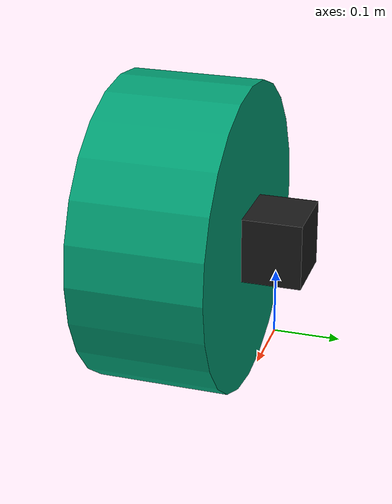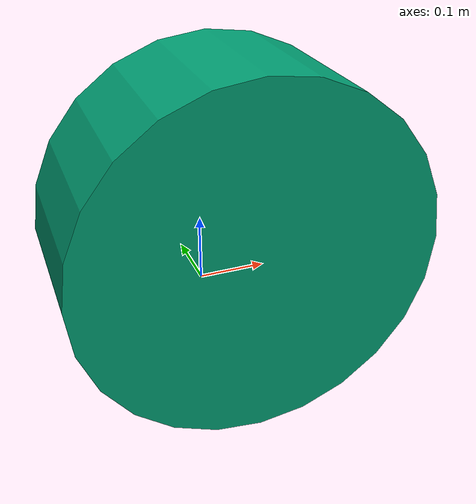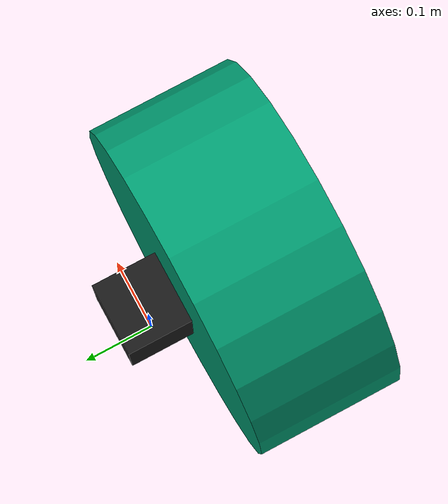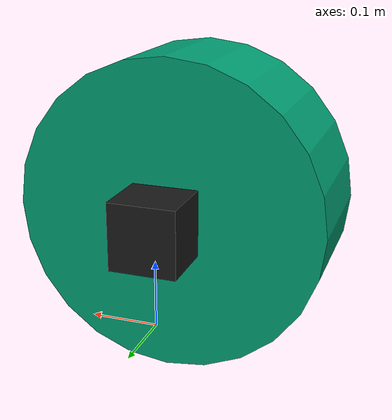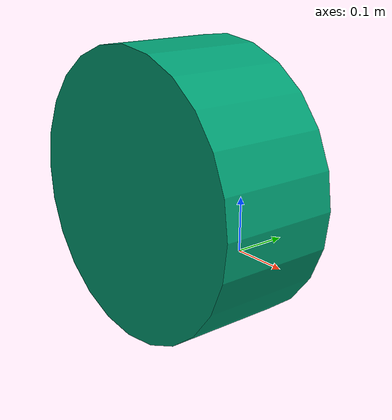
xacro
<?xml version="1.0" ?>
<!-- |    This document was autogenerated by xacro from rbcar.urdf.xacro               | -->
<!-- |    EDITING THIS FILE BY HAND IS NOT RECOMMENDED                                 | -->
<robot name="rbcar" xmlns:xacro="http://ros.org/wiki/xacro">
  <gazebo reference="base_footprint">
    <material>Gazebo/Green</material>
  </gazebo>
  <xacro:property name="PI" value="3.1415926535897931"/>
  <xacro:property name="wheel_width" value="0.317"/>
  <!-- BASE FOOTPRINT -->
  <link name="base_footprint">
    <visual>
      <origin rpy="0 0 0" xyz="0 0 0"/>
      <geometry>
        <box size="0.001 0.001 0.001"/>
      </geometry>
    </visual>
  </link>
  <joint name="base_footprint_joint" type="fixed">
    <origin rpy="0 0 0" xyz="0 0 0.150"/>
    <!-- height is the clearance -->
    <parent link="base_footprint"/>
    <child link="base_link"/>
  </joint>
  <!-- BASE_LINK -->
  <link name="base_link">
    <inertial>
      <mass value="125.0"/>
      <origin xyz="0 0 0"/>
      <inertia ixx="1.391" ixy="0.004" ixz="0.0" iyy="6.853" iyz="0.0" izz="6.125"/>
    </inertial>
    <visual>
      <origin rpy="0 0 0" xyz="0 0 0"/>
      <geometry>
        <box size="0.1 0.1 0.1"/>
      </geometry>
      <material name="darkgrey">
        <color rgba="0.1 0.1 0.1 1"/>
      </material>
    </visual>
    <collision>
      <origin rpy="0 0 0 " xyz="0 0 0"/>
      <geometry>
        <box size="0.1 0.1 0.1"/>
      </geometry>
    </collision>
  </link>

  <joint name="rear_axle_joint" type="continuous">
    <parent link="base_link"/>
    <child link="rear_axle"/>
    <origin rpy="1.57079633 0 3.14159265"/>
    <axis xyz="0 0 1"/>
    <limit effort="400" velocity="1000"/>
  </joint>
  <transmission name="rear_axle_transmission">
    <type>transmission_interface/SimpleTransmission</type>
    <joint name="rear_axle_joint">
      <hardwareInterface>EffortJointInterface</hardwareInterface>
    </joint>
    <actuator name="rear_axle_actuator">
      <!-- This hardwareInterface element exists for compatibility
             with ROS Hydro. -->
      <hardwareInterface>EffortJointInterface</hardwareInterface>
      <mechanicalReduction>1</mechanicalReduction>
    </actuator>
  </transmission>
  <link name="rear_axle">
    <visual>
      <origin xyz="0                      0                      -0.14"/>
      <geometry>
        <cylinder length="0.2" radius="0.235"/>
      </geometry>
      <material name="tire_mat"/>
    </visual>
    <collision>
      <origin xyz="0                                           0                      -0.14"/>
      <geometry>
        <cylinder length="0.2" radius="0.235"/>
      </geometry>
    </collision>
    <inertial>
      <mass value="8.0"/>
      <inertia ixx="0.164729166667" ixy="0" ixz="0" iyy="0.164729166667" iyz="0" izz="0.276125"/>
    </inertial>
  </link>
</robot>
